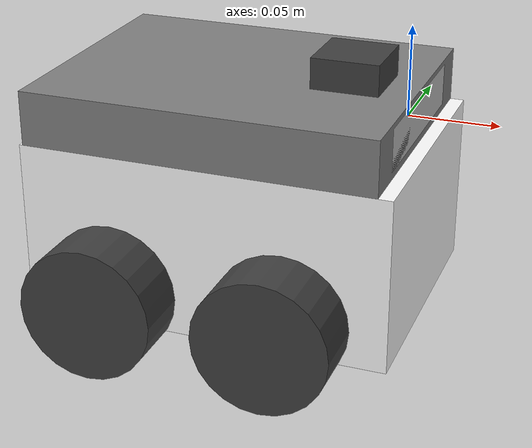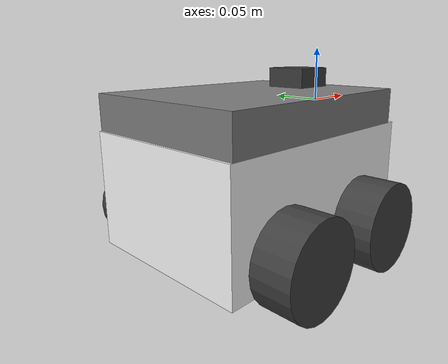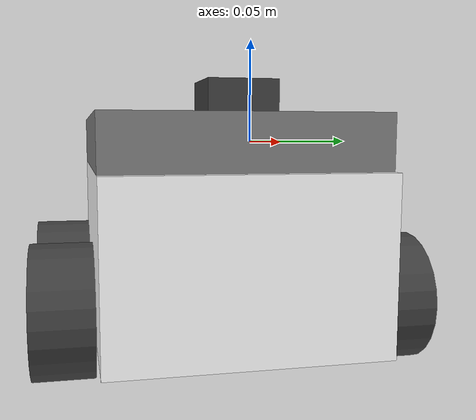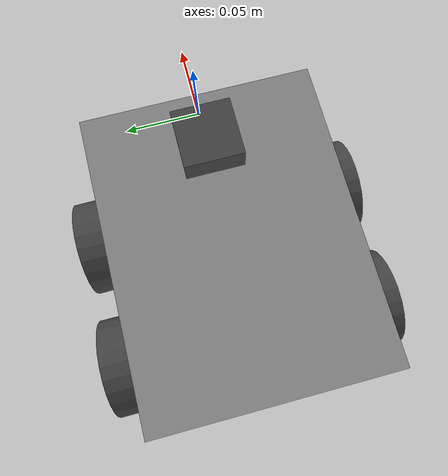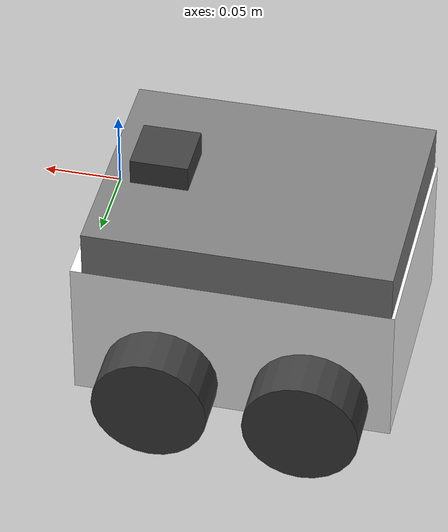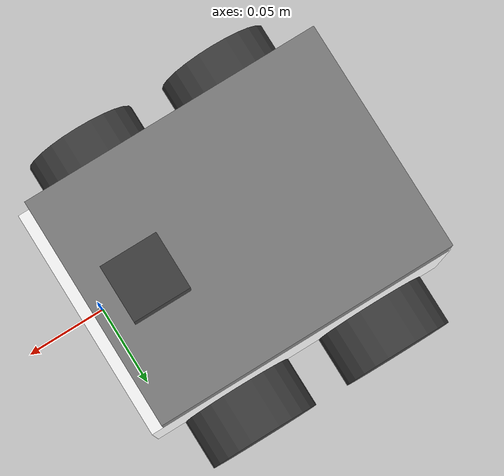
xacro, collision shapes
<?xml version="1.0" encoding="utf-8"?>
<robot name="akros2" xmlns:xacro="http://ros.org/wiki/xacro">
<xacro:include filename="$(find akros2_description)/urdf/akros2/akros2.common.xacro"/>
<xacro:include filename="$(find akros2_description)/urdf/akros2/akros2.control.xacro"/>
<xacro:include filename="$(find akros2_description)/urdf/akros2/akros2.gazebo.xacro"/>

<xacro:arg name="mesh_path" default="package://akros2_description/meshes/akros2/" /> <!-- HTTPS URL also works here -->
<xacro:arg name="unity" default="false" />
<xacro:property name="mesh_path" value="$(arg mesh_path)" />

<xacro:if value="$(arg unity)">
  <xacro:property name="mesh_path" value="" />
</xacro:if>

<!-- **** LINKS **** -->

<!-- BASE_LINK -->
<link name="base_link">
  <visual>
    <origin xyz="0 0 0" rpy="0 0 0" />
    <geometry>
      <mesh filename="${mesh_path}base_module.dae" />
    </geometry>
   <material name="White"/>
  </visual>
  <collision>
    <origin xyz="${base_offset_x} 0 ${base_height/2}" rpy="0 0 0" /> <!-- If needed: offset from ground = 0.0278 -->
    <geometry>
      <box size="${base_length} ${base_width} ${base_height}"/>
    </geometry>
  </collision>
</link>

<!-- BASE_LINK_INERTIAL (WORKAROUND FOR KDL WHICH DOES NOT ACCEPT BASE_LINK WITH INERTIA) -->
<link name="base_link_inertial">
  <inertial>
    <origin xyz="0 0 0" rpy="0 0 0" />
    <mass value="${base_mass}"/>
    <xacro:box_inertia m="${base_mass}" x="${base_length}" y="${base_width}" z="${base_height}"/>
  </inertial>
</link>

<!-- BASE_FOOTPRINT -->
<link name="base_footprint"/>

<!-- NAV_LINK -->
<link name="nav_link">
  <inertial>
    <mass value="${nav_mass}" />
    <xacro:box_inertia m="${nav_mass}" x="${nav_length}" y="${nav_width}" z="${nav_height}"/>
  </inertial>
  <visual>
    <origin xyz="0 0 -0.099" rpy="0 0 0" />
    <geometry>
      <mesh filename="${mesh_path}navigation_module.dae" />
    </geometry>
    <material name="DarkGrey"/>
  </visual>
  <collision>
    <origin xyz="0 0 ${nav_height/2}" rpy="0 0 0" /> <!-- If needed: offset from base_link = -0.099 -->
    <geometry>
      <box size="${nav_length} ${nav_width} ${nav_height}"/>
    </geometry>
  </collision>
</link>

<!-- LD06 LASER_LINK -->
<link name="laser_link">
  <inertial>
    <origin xyz="0 0 0" rpy="0 0 0" />
    <mass value="${laser_mass}" />
    <xacro:box_inertia m="${laser_mass}" x="${laser_length}" y="${laser_width}" z="${laser_height}"/>
  </inertial>
  <visual>
    <origin xyz="0 0 0" rpy="0 0 ${minus_pi_by_two}" />
    <geometry>
      <mesh filename="${mesh_path}ld06.dae" />
    </geometry>
    <material name="FlatBlack"/>
  </visual>
  <collision>
    <origin xyz="0 0 ${laser_height/2}" rpy="0 0 ${minus_pi_by_two}" />
    <geometry>
      <box size="${laser_length} ${laser_width} ${laser_height}"/>
    </geometry>
  </collision>
</link>

<!-- LASER_FRAME -->
<link name="laser_frame"/>

<!-- MPU9250 IMU_LINK -->
<link name="imu_link"/>

<!-- IMU_FRAME -->
<link name="imu_frame"/>

<!-- T265 TRACKING CAMERA (T265_POSE_FRAME AS WORKAROUND TO KEEP TREE CONTINUOUS)-->
<link name="t265_pose_frame">
  <visual>
    <origin xyz="0 0 0" rpy="0 0 0" />
    <geometry>
      <mesh filename="${mesh_path}t265.dae" />
    </geometry>
    <material name="Grey"/>
  </visual>
  <collision>
    <origin xyz="0 ${t265_offset_y} 0" rpy="0 0 0" />
    <geometry>
      <box size="${t265_length} ${t265_width} ${t265_height}"/>
    </geometry>
  </collision>
</link>

<!-- T265 TRACKING CAMERA (T265_POSE_INERTIAL)-->
<link name="t265_pose_inertial">
  <inertial>
    <origin xyz="0 0 0" rpy="0 0 0" />
    <mass value="${t265_mass}" />
    <xacro:box_inertia m="${t265_mass}" x="${t265_length}" y="${t265_width}" z="${t265_height}"/>
  </inertial>
</link>

<!-- WHEEL LEFT FRONT -->
<link name="wheel_lf">
  <inertial>
    <mass value="${wheel_mass}"/>
    <xacro:cylinder_inertia m="${wheel_mass}" r="${wheel_radius}" h="${wheel_height}"/>
  </inertial>
  <visual>
    <origin xyz="0 0 0" rpy="0 0 0" />
    <geometry>
      <mesh filename="${mesh_path}wheel_lf.dae" />
    </geometry>
    <material name="FlatBlack"/>
  </visual>
  <collision>
    <origin xyz="0 ${wheel_height/2} 0" rpy="${pi_by_two} 0 0" /><!-- If needed: offset from joint = 0.01 -->
    <geometry>
      <cylinder length="${wheel_height}" radius="${wheel_radius}"/>
    </geometry>
  </collision>
</link>

<!-- WHEEL LEFT BACK -->
<link name="wheel_lb">
  <inertial>
    <mass value="${wheel_mass}"/>
    <xacro:cylinder_inertia m="${wheel_mass}" r="${wheel_radius}" h="${wheel_height}"/>
  </inertial>
  <visual>
    <origin xyz="0 0 0" rpy="0 0 0" />
    <geometry>
      <mesh filename="${mesh_path}wheel_lb.dae" />
    </geometry>
    <material name="FlatBlack"/>
  </visual>
  <collision>
    <origin xyz="0 ${wheel_height/2} 0" rpy="${pi_by_two} 0 0" /><!-- If needed: offset from joint = 0.01 -->
    <geometry>
      <cylinder length="${wheel_height}" radius="${wheel_radius}"/>
    </geometry>
  </collision>
</link>

<!-- WHEEL RIGHT FRONT -->
<link name="wheel_rf">
  <inertial>
    <mass value="${wheel_mass}"/>
    <xacro:cylinder_inertia m="${wheel_mass}" r="${wheel_radius}" h="${wheel_height}"/>
  </inertial>
  <visual>
    <origin xyz="0 0 0" rpy="0 0 0" />
    <geometry>
      <mesh filename="${mesh_path}wheel_rf.dae" />
    </geometry>
    <material name="FlatBlack"/>
  </visual>
  <collision>
    <origin xyz="0 ${-1*(wheel_height/2)} 0" rpy="${pi_by_two} 0 0" /><!-- If needed: offset from joint = 0.01 -->
    <geometry>
      <cylinder length="${wheel_height}" radius="${wheel_radius}"/>
    </geometry>
  </collision>
</link>

<!-- WHEEL RIGHT BACK -->
<link name="wheel_rb">
  <inertial>
    <mass value="${wheel_mass}"/>
    <xacro:cylinder_inertia m="${wheel_mass}" r="${wheel_radius}" h="${wheel_height}"/>
  </inertial>
  <visual>
    <origin xyz="0 0 0" rpy="0 0 0" />
    <geometry>
      <mesh filename="${mesh_path}wheel_rb.dae" />
    </geometry>
    <material name="FlatBlack"/>
  </visual>
  <collision>
    <origin xyz="0 ${-1*(wheel_height/2)} 0" rpy="${pi_by_two} 0 0" /><!-- If needed: offset from joint = 0.01 -->
    <geometry>
      <cylinder length="${wheel_height}" radius="${wheel_radius}"/>
    </geometry>
  </collision>
</link>

<!-- **** JOINTS **** -->

<!-- BASE_LINK TO T265_POSE_FRAME -->
<joint name="pose_base_fixed" type="fixed">
  <parent link="t265_pose_frame"/>
  <child link="base_link"/>
  <origin xyz="${pose_base_offset_x} 0 ${pose_base_offset_z}"/>
</joint>

<!-- T265_POSE_INERTIAL TO T265_POSE_FRAME -->
<joint name="pose_inertial_fixed" type="fixed">
  <parent link="t265_pose_frame"/>
  <child link="t265_pose_inertial"/>
  <origin xyz="0 0 0"/>
</joint>

<!-- BASE_LINK_INERTIAL TO BASE_LINK -->
<joint name="base_inertial_fixed" type="fixed">
  <parent link="base_link"/>
  <child link="base_link_inertial"/>
  <origin xyz="0 0 0"/>
</joint>

<!-- BASE_FOOTPRINT TO BASE_LINK -->
<joint name="base_footprint_fixed" type="fixed">
  <parent link="base_link"/>
  <child link="base_footprint"/>
  <origin xyz="0 0 0"/>
</joint>

<!-- NAV_LINK TO BASE_LINK -->
<joint name="base_nav_fixed" type="fixed">
  <parent link="base_link"/>
  <child link="nav_link"/>
  <origin xyz="0 0 ${base_height}"/>
  <axis xyz="0 0 0"/>
</joint>

<!-- LASER_LINK TO NAV_LINK -->
<joint name="nav_laser_fixed" type="fixed">
  <parent link="nav_link"/>
  <child link="laser_link"/>
  <origin xyz="${nav_laser_offset_x} 0 ${nav_height/2}"/>
</joint>

<!-- LASER_FRAME TO LASER_LINK -->
<joint name="laser_frame_fixed" type="fixed">
  <parent link="laser_link"/>
  <child link="laser_frame"/>
  <origin xyz="0 0 ${laser_frame_offset_z}"/>
</joint>

<!-- IMU_LINK TO BASE_LINK -->
<joint name="imu_base_fixed" type="fixed">
  <parent link="base_link"/>
  <child link="imu_link"/>
  <origin xyz="0 0 0"/>
</joint>

<!-- IMU_FRAME TO IMU_LINK -->
<joint name="imu_frame_fixed" type="fixed">
  <parent link="imu_link"/>
  <child link="imu_frame"/>
  <origin xyz="0 0 0"/>
</joint>

<!-- WHEEL_LF TO BASE_LINK -->
<joint name="joint_lf" type="continuous">
  <parent link="base_link" />
  <child link="wheel_lf" />
  <origin xyz="${joint_offset_x} ${joint_offset_y} ${joint_offset_z}" rpy="0 0 0" />
  <axis xyz="0 1 0" />
</joint>

<!-- WHEEL_LB TO BASE_LINK -->
<joint name="joint_lb" type="continuous">
  <parent link="base_link" />
  <child link="wheel_lb" />
  <origin xyz="${-1*joint_offset_x} ${joint_offset_y} ${joint_offset_z}" rpy="0 0 0" />
  <axis xyz="0 1 0" />
</joint>

<!-- WHEEL_RF TO BASE_LINK -->
<joint name="joint_rf" type="continuous">
  <parent link="base_link" />
  <child link="wheel_rf" />
  <origin xyz="${joint_offset_x} ${-1*joint_offset_y} ${joint_offset_z}" rpy="0 0 0" />
  <axis xyz="0 1 0" />
</joint>

<!-- WHEEL_RB TO BASE_LINK -->
<joint name="joint_rb" type="continuous">
  <parent link="base_link" />
  <child link="wheel_rb" />
  <origin xyz="${-1*joint_offset_x} ${-1*joint_offset_y} ${joint_offset_z}" rpy="0 0 0" />
  <axis xyz="0 1 0" />
</joint>

</robot>

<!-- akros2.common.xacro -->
<robot name="akros2_common" xmlns:xacro="http://ros.org/wiki/xacro">

<xacro:property name="pi_by_two" value="1.5707963" />
<xacro:property name="minus_pi_by_two" value="-1.5707963" />

<xacro:property name="base_mass" value="2.0" /> <!-- Guesstimate, needs to be measured -->
<xacro:property name="base_length" value="0.210" />
<xacro:property name="base_width" value="0.154" /> <!-- Change 0.154 to 0.174 to include motor shafts and emergency button. NB: Geometry intersects wheels -->
<xacro:property name="base_height" value="0.099" />
<xacro:property name="base_offset_x" value="0.003" />

<xacro:property name="nav_mass" value="0.5" /> <!-- Guesstimate, needs to be measured -->
<xacro:property name="nav_length" value="0.2" />
<xacro:property name="nav_width" value="0.154" />
<xacro:property name="nav_height" value="0.031" />

<xacro:property name="laser_mass" value="0.12" />
<xacro:property name="laser_length" value="0.038" />
<xacro:property name="laser_width" value="0.0381" />
<xacro:property name="laser_height" value="0.033" />

<xacro:property name="t265_mass" value="0.055" />
<xacro:property name="t265_length" value="0.012" />
<xacro:property name="t265_width" value="0.108" />
<xacro:property name="t265_height" value="0.024" />
<xacro:property name="t265_offset_y" value="0.00125" />

<xacro:property name="wheel_radius" value="0.038" />
<xacro:property name="wheel_mass" value="0.075" />
<xacro:property name="wheel_height" value="0.034" />

<xacro:property name="pose_base_offset_x" value="-0.094" />
<xacro:property name="pose_base_offset_z" value="-0.115" />
<xacro:property name="nav_laser_offset_x" value="0.0632" />
<xacro:property name="laser_frame_offset_z" value="0.0255" />

<xacro:property name="joint_offset_x" value="0.0495" />
<xacro:property name="joint_offset_y" value="0.078" />
<xacro:property name="joint_offset_z" value="0.021" />

<xacro:macro name="cylinder_inertia" params="m r h">
  <inertia  ixx="${m*(3*r*r+h*h)/12}" ixy = "0" ixz = "0"
            iyy="${m*(3*r*r+h*h)/12}" iyz = "0"
            izz="${m*r*r/2}" />
</xacro:macro>

<xacro:macro name="box_inertia" params="m x y z">
  <inertia  ixx="${m*(y*y+z*z)/12}" ixy = "0" ixz = "0"
            iyy="${m*(x*x+z*z)/12}" iyz = "0"
            izz="${m*(x*x+z*z)/12}" />
</xacro:macro>

<xacro:macro name="sphere_inertia" params="m r">
  <inertia  ixx="${2*m*r*r/5}" ixy = "0" ixz = "0"
            iyy="${2*m*r*r/5}" iyz = "0"
            izz="${2*m*r*r/5}" />
</xacro:macro>

<material name="FlatBlack">
    <color rgba="0.25 0.25 0.25 1"/>
</material>

<material name="DarkGrey">
    <color rgba="0.5 0.5 0.5 1"/>
</material>

<material name="Grey">
    <color rgba="0.75 0.75 0.75 1"/>
</material>

<material name="White">
     <color rgba="1 1 1 1"/>
</material>

</robot>
